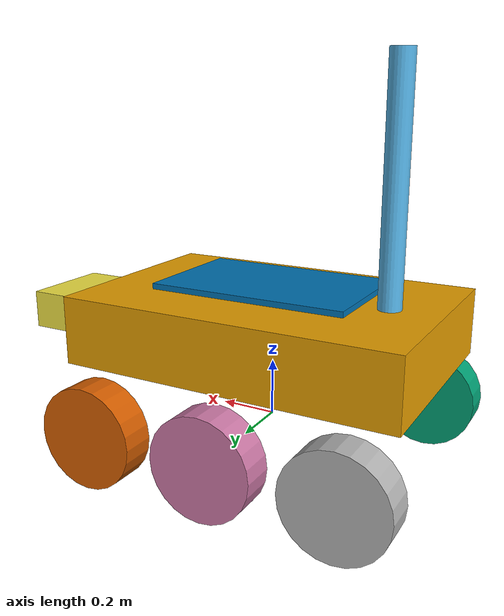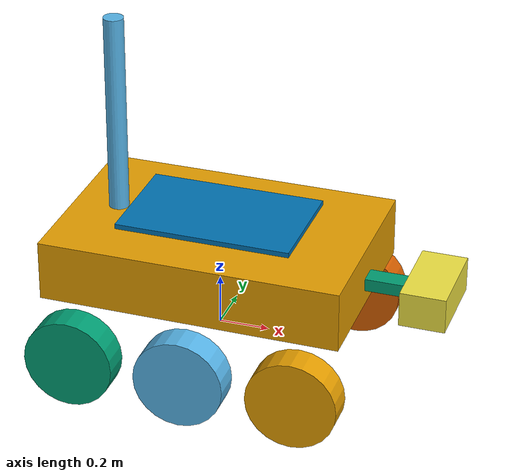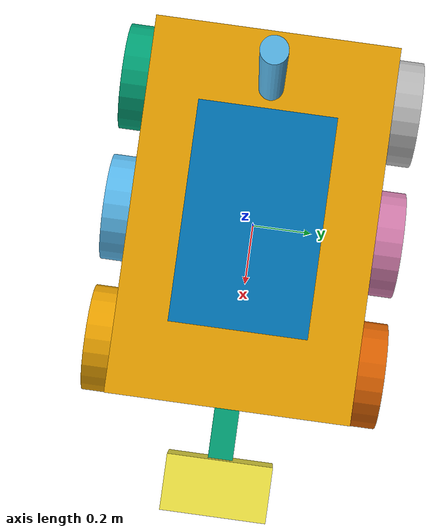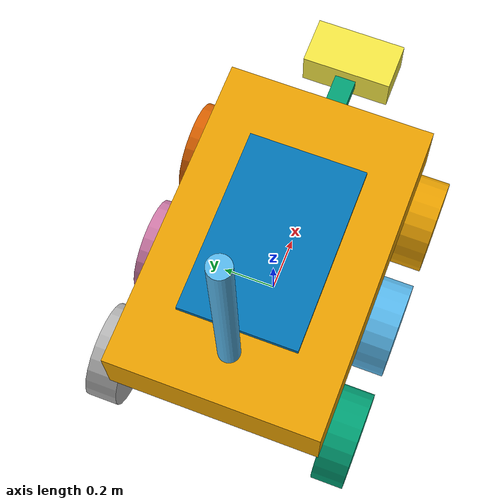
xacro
<?xml version="1.0"?>
<robot xmlns:xacro="http://www.ros.org/wiki/xacro" name="alam_rover2">

  <!-- Gazebo test rover body for moon-world side-by-side spawn -->
  <!-- Expected folder: /root/ws/assets/custom/rover_body_2 -->

  <xacro:property name="texture_root" value="/root/ws/assets/custom/rover_body_2/textures"/>

  <xacro:property name="chassis_mass" value="55.0"/>
  <xacro:property name="chassis_length" value="1.20"/>
  <xacro:property name="chassis_width" value="0.78"/>
  <xacro:property name="chassis_height" value="0.24"/>
  <xacro:property name="chassis_clearance" value="0.03"/>
  <xacro:property name="wheel_mass" value="4.0"/>
  <xacro:property name="wheel_radius" value="0.18"/>
  <xacro:property name="wheel_width" value="0.12"/>
  <xacro:property name="wheel_y_offset" value="0.44"/>
  <xacro:property name="wheel_z" value="0.0"/>
  <xacro:property name="body_z" value="${wheel_radius + chassis_clearance + chassis_height/2.0}"/>
  <xacro:property name="mast_z" value="${body_z + chassis_height/2.0 + 0.40}"/>
  <xacro:property name="panel_z" value="${body_z + chassis_height/2.0 + 0.03}"/>
  <xacro:property name="moon_mu1" value="1.10"/>
  <xacro:property name="moon_mu2" value="0.95"/>

  <!-- Base body -->
  <link name="base_link">
    <visual>
      <origin xyz="0 0 ${body_z}" rpy="0 0 0"/>
      <geometry>
        <box size="${chassis_length} ${chassis_width} ${chassis_height}"/>
      </geometry>
    </visual>
    <collision>
      <origin xyz="0 0 ${body_z}" rpy="0 0 0"/>
      <geometry>
        <box size="${chassis_length} ${chassis_width} ${chassis_height}"/>
      </geometry>
    </collision>
    <inertial>
      <mass value="${chassis_mass}"/>
      <origin xyz="0 0 ${body_z}" rpy="0 0 0"/>
      <inertia ixx="3.5" ixy="0.0" ixz="0.0" iyy="8.0" iyz="0.0" izz="9.0"/>
    </inertial>
  </link>

  <gazebo reference="base_link">
    <self_collide>false</self_collide>
    <visual>
      <material>
        <ambient>0.6 0.6 0.6 1.0</ambient>
        <diffuse>0.6 0.6 0.6 1.0</diffuse>
        <pbr>
          <metal>
            <albedo_map>file://${texture_root}/Silver/Poliigon_MetalSteelBrushed_7174_BaseColor.jpg</albedo_map>
            <normal_map>file://${texture_root}/Silver/Poliigon_MetalSteelBrushed_7174_Normal.jpg</normal_map>
            <roughness_map>file://${texture_root}/Silver/Poliigon_MetalSteelBrushed_7174_Roughness.jpg</roughness_map>
            <metalness_map>file://${texture_root}/Silver/Poliigon_MetalSteelBrushed_7174_Metallic.jpg</metalness_map>
            <ambient_occlusion_map>file://${texture_root}/Silver/Poliigon_MetalSteelBrushed_7174_AmbientOcclusion.jpg</ambient_occlusion_map>
          </metal>
        </pbr>
      </material>
    </visual>
  </gazebo>

  <!-- Mast -->
  <link name="mast_link">
    <visual>
      <origin xyz="0 0 0.40" rpy="0 0 0"/>
      <geometry>
        <cylinder radius="0.04" length="0.80"/>
      </geometry>
    </visual>
    <collision>
      <origin xyz="0 0 0.40" rpy="0 0 0"/>
      <geometry>
        <cylinder radius="0.04" length="0.80"/>
      </geometry>
    </collision>
    <inertial>
      <mass value="1.5"/>
      <origin xyz="0 0 0.40" rpy="0 0 0"/>
      <inertia ixx="0.05" ixy="0.0" ixz="0.0" iyy="0.05" iyz="0.0" izz="0.005"/>
    </inertial>
  </link>

  <joint name="mast_joint" type="fixed">
    <parent link="base_link"/>
    <child link="mast_link"/>
    <origin xyz="-0.42 0 ${body_z + chassis_height/2.0}" rpy="0 0 0"/>
  </joint>

  <gazebo reference="mast_link">
    <visual>
      <material>
        <ambient>0.35 0.35 0.35 1.0</ambient>
        <diffuse>0.35 0.35 0.35 1.0</diffuse>
        <pbr>
          <metal>
            <albedo_map>file://${texture_root}/Plastic/Poliigon_PlasticMoldDryBlast_7495_BaseColor.jpg</albedo_map>
            <normal_map>file://${texture_root}/Plastic/Poliigon_PlasticMoldDryBlast_7495_Normal.jpg</normal_map>
            <roughness_map>file://${texture_root}/Plastic/Poliigon_PlasticMoldDryBlast_7495_Roughness.jpg</roughness_map>
            <metalness_map>file://${texture_root}/Plastic/Poliigon_PlasticMoldDryBlast_7495_Metallic.jpg</metalness_map>
            <ambient_occlusion_map>file://${texture_root}/Plastic/Poliigon_PlasticMoldDryBlast_7495_AmbientOcclusion.jpg</ambient_occlusion_map>
          </metal>
        </pbr>
      </material>
    </visual>
  </gazebo>

  <!-- Simple temporary front arm and bucket -->
  <link name="arm_link">
    <visual>
      <origin xyz="0.20 0 0" rpy="0 0 0"/>
      <geometry>
        <box size="0.40 0.08 0.05"/>
      </geometry>
    </visual>
    <collision>
      <origin xyz="0.20 0 0" rpy="0 0 0"/>
      <geometry>
        <box size="0.40 0.08 0.05"/>
      </geometry>
    </collision>
    <inertial>
      <mass value="2.0"/>
      <origin xyz="0.20 0 0" rpy="0 0 0"/>
      <inertia ixx="0.03" ixy="0.0" ixz="0.0" iyy="0.05" iyz="0.0" izz="0.05"/>
    </inertial>
  </link>

  <joint name="arm_joint" type="revolute">
    <parent link="base_link"/>
    <child link="arm_link"/>
    <origin xyz="${chassis_length/2.0 - 0.14} 0 ${body_z - 0.03}" rpy="0 0 0"/>
    <axis xyz="0 1 0"/>
    <limit lower="-0.50" upper="0.70" effort="60.0" velocity="0.8"/>
  </joint>

  <link name="bucket_link">
    <visual>
      <origin xyz="0 0 0" rpy="0 0 0"/>
      <geometry>
        <box size="0.18 0.34 0.14"/>
      </geometry>
    </visual>
    <collision>
      <origin xyz="0 0 0" rpy="0 0 0"/>
      <geometry>
        <box size="0.18 0.34 0.14"/>
      </geometry>
    </collision>
    <inertial>
      <mass value="2.5"/>
      <origin xyz="0 0 0" rpy="0 0 0"/>
      <inertia ixx="0.02" ixy="0.0" ixz="0.0" iyy="0.02" iyz="0.0" izz="0.02"/>
    </inertial>
  </link>

  <joint name="bucket_joint" type="fixed">
    <parent link="arm_link"/>
    <child link="bucket_link"/>
    <origin xyz="0.40 0 0" rpy="0 0 0"/>
  </joint>

  <gazebo reference="bucket_link">
    <visual>
      <material>
        <ambient>0.55 0.45 0.10 1.0</ambient>
        <diffuse>0.55 0.45 0.10 1.0</diffuse>
        <pbr>
          <metal>
            <albedo_map>file://${texture_root}/Gold/Poliigon_MetalGoldPaint_7253_BaseColor.jpg</albedo_map>
            <normal_map>file://${texture_root}/Gold/Poliigon_MetalGoldPaint_7253_Normal.jpg</normal_map>
            <roughness_map>file://${texture_root}/Gold/Poliigon_MetalGoldPaint_7253_Roughness.jpg</roughness_map>
            <metalness_map>file://${texture_root}/Gold/Poliigon_MetalGoldPaint_7253_Metallic.jpg</metalness_map>
            <ambient_occlusion_map>file://${texture_root}/Gold/Poliigon_MetalGoldPaint_7253_AmbientOcclusion.jpg</ambient_occlusion_map>
          </metal>
        </pbr>
      </material>
    </visual>
  </gazebo>

  <!-- Solar panel -->
  <link name="solar_panel_link">
    <visual>
      <origin xyz="0 0 0" rpy="0 0 0"/>
      <geometry>
        <box size="0.70 0.44 0.02"/>
      </geometry>
    </visual>
    <collision>
      <origin xyz="0 0 0" rpy="0 0 0"/>
      <geometry>
        <box size="0.70 0.44 0.02"/>
      </geometry>
    </collision>
    <inertial>
      <mass value="0.8"/>
      <origin xyz="0 0 0" rpy="0 0 0"/>
      <inertia ixx="0.01" ixy="0.0" ixz="0.0" iyy="0.02" iyz="0.0" izz="0.02"/>
    </inertial>
  </link>

  <joint name="solar_panel_joint" type="fixed">
    <parent link="base_link"/>
    <child link="solar_panel_link"/>
    <origin xyz="0 0 ${panel_z}" rpy="0 0 0"/>
  </joint>

  <gazebo reference="solar_panel_link">
    <visual>
      <material>
        <ambient>0.20 0.20 0.25 1.0</ambient>
        <diffuse>0.20 0.20 0.25 1.0</diffuse>
        <pbr>
          <metal>
            <albedo_map>file://${texture_root}/Slate/Poliigon_SlateFloorTile_7657_BaseColor.jpg</albedo_map>
            <normal_map>file://${texture_root}/Slate/Poliigon_SlateFloorTile_7657_Normal.jpg</normal_map>
            <roughness_map>file://${texture_root}/Slate/Poliigon_SlateFloorTile_7657_Roughness.jpg</roughness_map>
            <metalness_map>file://${texture_root}/Slate/Poliigon_SlateFloorTile_7657_Metallic.jpg</metalness_map>
            <ambient_occlusion_map>file://${texture_root}/Slate/Poliigon_SlateFloorTile_7657_AmbientOcclusion.jpg</ambient_occlusion_map>
          </metal>
        </pbr>
      </material>
    </visual>
  </gazebo>

  <!-- Wheel macro -->
  <xacro:macro name="rover_wheel" params="prefix x_offset y_offset">
    <link name="${prefix}_wheel">
      <visual>
        <origin xyz="0 0 0" rpy="1.5708 0 0"/>
        <geometry>
          <cylinder radius="${wheel_radius}" length="${wheel_width}"/>
        </geometry>
      </visual>
      <collision>
        <origin xyz="0 0 0" rpy="1.5708 0 0"/>
        <geometry>
          <cylinder radius="${wheel_radius}" length="${wheel_width}"/>
        </geometry>
      </collision>
      <inertial>
        <mass value="${wheel_mass}"/>
        <origin xyz="0 0 0" rpy="1.5708 0 0"/>
        <inertia ixx="0.04" ixy="0.0" ixz="0.0" iyy="0.04" iyz="0.0" izz="0.04"/>
      </inertial>
    </link>

    <joint name="${prefix}_wheel_joint" type="continuous">
      <parent link="base_link"/>
      <child link="${prefix}_wheel"/>
      <origin xyz="${x_offset} ${y_offset} ${wheel_z}" rpy="0 0 0"/>
      <axis xyz="0 1 0"/>
    </joint>

    <gazebo reference="${prefix}_wheel">
      <mu1>${moon_mu1}</mu1>
      <mu2>${moon_mu2}</mu2>
      <self_collide>false</self_collide>
      <visual>
        <material>
          <ambient>0.18 0.18 0.18 1.0</ambient>
          <diffuse>0.18 0.18 0.18 1.0</diffuse>
          <pbr>
            <metal>
              <albedo_map>file://${texture_root}/Ceramic/TilesCeramicHerringbone002_COL_2K.jpg</albedo_map>
              <normal_map>file://${texture_root}/Ceramic/TilesCeramicHerringbone002_NRM_2K.jpg</normal_map>
              <roughness_map>file://${texture_root}/Ceramic/TilesCeramicHerringbone002_GLOSS_2K.jpg</roughness_map>
              <ambient_occlusion_map>file://${texture_root}/Ceramic/TilesCeramicHerringbone002_AO_2K.jpg</ambient_occlusion_map>
            </metal>
          </pbr>
        </material>
      </visual>
    </gazebo>
  </xacro:macro>

  <xacro:rover_wheel prefix="front_left"  x_offset="0.45"  y_offset="${ wheel_y_offset}"/>
  <xacro:rover_wheel prefix="mid_left"    x_offset="0.0"   y_offset="${ wheel_y_offset}"/>
  <xacro:rover_wheel prefix="rear_left"   x_offset="-0.45" y_offset="${ wheel_y_offset}"/>
  <xacro:rover_wheel prefix="front_right" x_offset="0.45"  y_offset="${-wheel_y_offset}"/>
  <xacro:rover_wheel prefix="mid_right"   x_offset="0.0"   y_offset="${-wheel_y_offset}"/>
  <xacro:rover_wheel prefix="rear_right"  x_offset="-0.45" y_offset="${-wheel_y_offset}"/>

  <!-- Diff drive for first Gazebo body test -->
  <gazebo>
    <plugin filename="gz-sim-diff-drive-system" name="gz::sim::systems::DiffDrive">
      <left_joint>front_left_wheel_joint</left_joint>
      <left_joint>mid_left_wheel_joint</left_joint>
      <left_joint>rear_left_wheel_joint</left_joint>
      <right_joint>front_right_wheel_joint</right_joint>
      <right_joint>mid_right_wheel_joint</right_joint>
      <right_joint>rear_right_wheel_joint</right_joint>
      <wheel_separation>${2.0 * wheel_y_offset}</wheel_separation>
      <wheel_radius>${wheel_radius}</wheel_radius>
      <topic>cmd_vel_rover2</topic>
      <odom_topic>odom_rover2</odom_topic>
      <tf_topic>tf_rover2</tf_topic>
      <odom_publish_frequency>30</odom_publish_frequency>
      <frame_id>odom_rover2</frame_id>
      <child_frame_id>base_link</child_frame_id>
    </plugin>
  </gazebo>

</robot>
